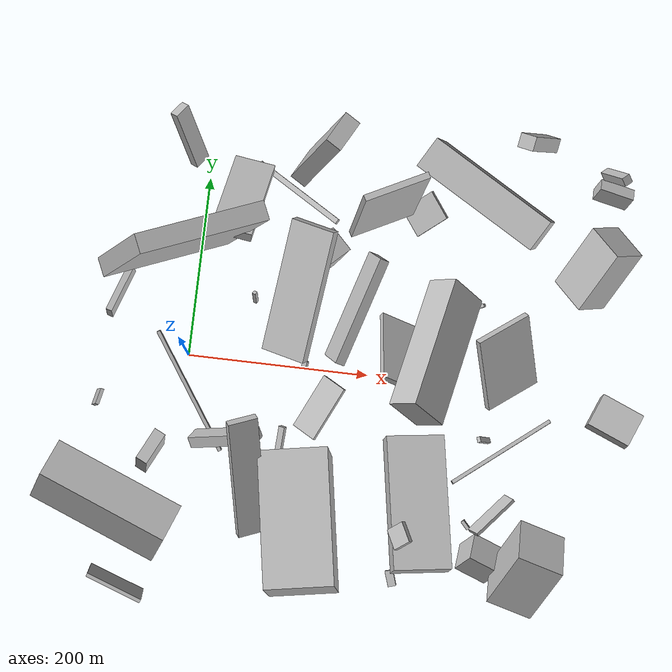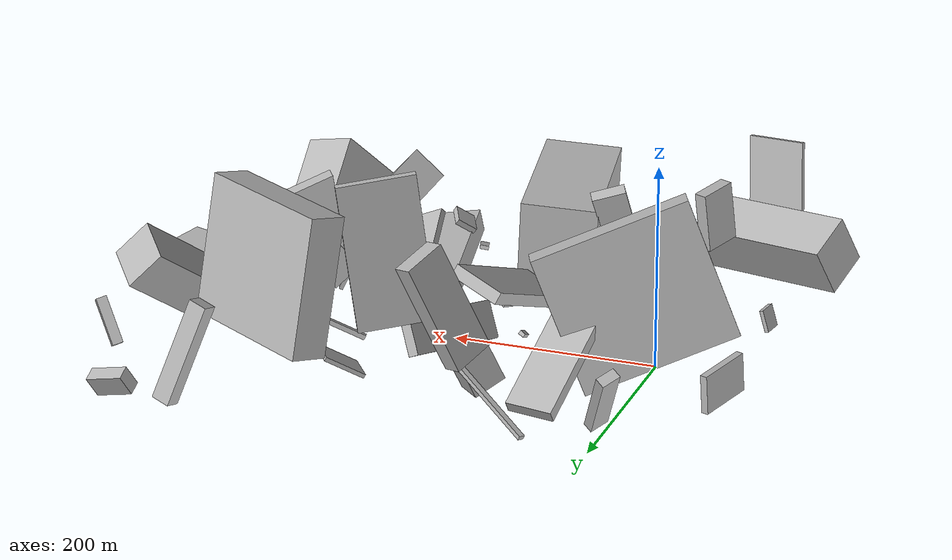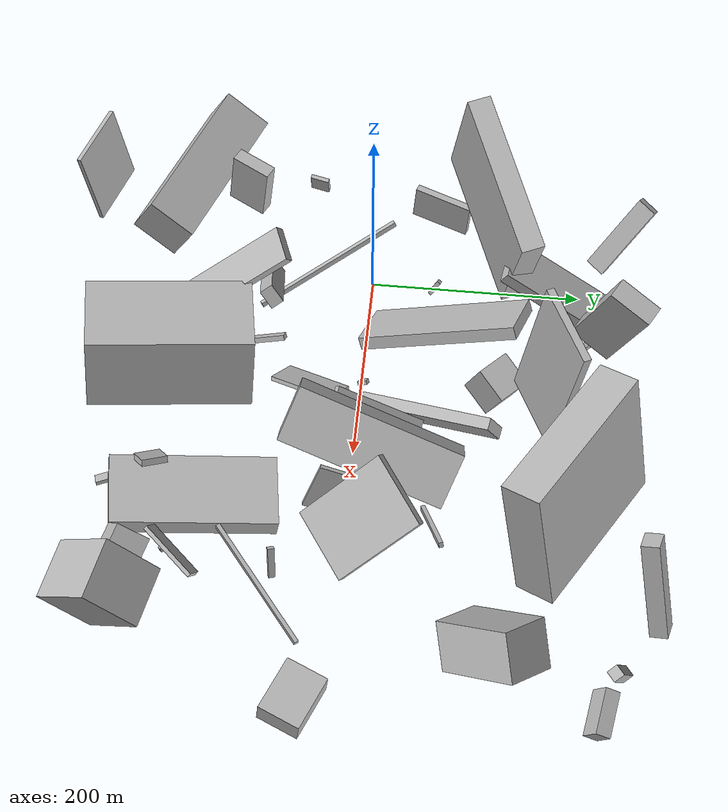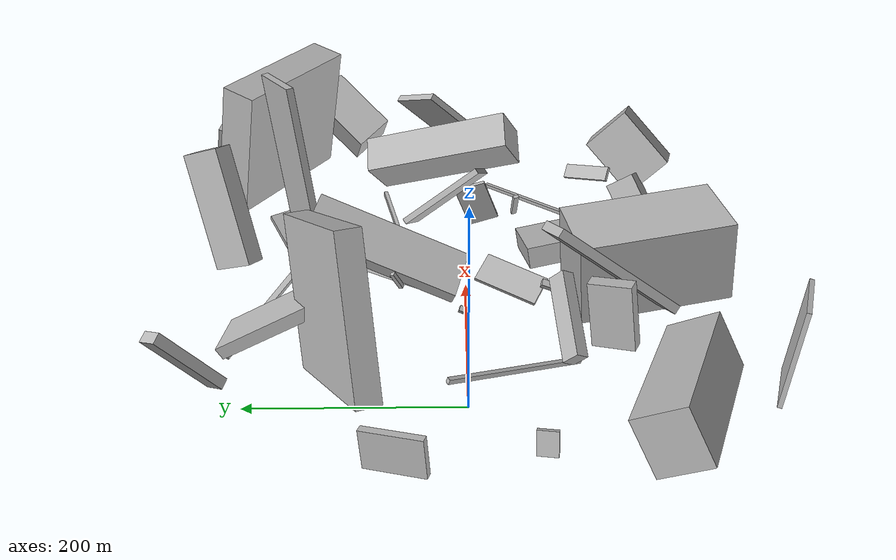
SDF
<sdf version="1.6">
 <world name="default">
  <scene>
   <sky><clouds><speed>12</speed></clouds></sky>
   <ambient>0.4 0.4 0.4 1</ambient>
   <background>0.7 0.7 0.7 1</background>
   <shadows>1</shadows>
  </scene>
  <gravity>0 0 -9.8066</gravity>
  <magnetic_field>6e-06 2.3e-05 -4.2e-05</magnetic_field>
  <physics default="0" name="default_physics" type="ode">
   <ode>
    <solver>
     <type>quick</type>
     <iters>10</iters>
     <sor>1.0</sor>
     <use_dynamic_moi_rescaling>0</use_dynamic_moi_rescaling>
    </solver>
    <constraints>
     <cfm>0</cfm>
     <erp>0.2</erp>
     <contact_max_correcting_vel>100</contact_max_correcting_vel>
     <contact_surface_layer>0.001</contact_surface_layer>
    </constraints>
   </ode>
   <max_step_size>0.004</max_step_size>
   <real_time_factor>1</real_time_factor>
   <real_time_update_rate>250</real_time_update_rate>
  </physics>
  <light name="sun" type="directional">
   <pose>0 0 10 0 0 0</pose>
   <diffuse>0.8 0.8 0.8 1</diffuse>
   <specular>0.2 0.2 0.2 1</specular>
   <attenuation>
    <range>1000</range>
    <constant>0.9</constant>
    <linear>0.01</linear>
    <quadratic>0.001</quadratic>
   </attenuation>
   <direction>-0.5 0.1 -0.9</direction>
  </light>
  <model name="building_1">
   <static>0</static>
   <pose>243.8923714945121 182.61482702744223 43.696038303844745 0.013859221031567661 -0.5389243472475634 0.6192503805278706</pose>
   <link name="link">
    <gravity>0</gravity>
    <pose>0 0 2.0 0 0 0</pose>
    <collision name="collision"><geometry><box><size>42 34 4</size></box></geometry></collision>
    <visual name="visual">
     <cast_shadows>0</cast_shadows>
     <geometry><box><size>42 34 4</size></box></geometry>
     <material>
      <script>
       <uri>model://HANNAS_wall/materials/scripts</uri>
       <uri>model://HANNAS_wall/materials/textures</uri>
       <name>vrc/HANNAS_wall</name>
      </script>
     </material>
    </visual>
   </link>
  </model>
  <model name="building_2">
   <static>0</static>
   <pose>18.241960678553085 -94.00412495111541 37.787467995542606 0.7345366702129014 0.7965632476955266 1.0186601931983357</pose>
   <link name="link">
    <gravity>0</gravity>
    <pose>0 0 41.5 0 0 0</pose>
    <collision name="collision"><geometry><box><size>19 13 83</size></box></geometry></collision>
    <visual name="visual">
     <cast_shadows>0</cast_shadows>
     <geometry><box><size>19 13 83</size></box></geometry>
     <material>
      <script>
       <uri>model://HANNAS_wall/materials/scripts</uri>
       <uri>model://HANNAS_wall/materials/textures</uri>
       <name>vrc/HANNAS_wall</name>
      </script>
     </material>
    </visual>
   </link>
  </model>
  <model name="building_3">
   <static>0</static>
   <pose>419.90557189355656 109.40219672986615 68.28611864637067 0.6025003204381529 -0.7821502527237763 -2.855041254365767</pose>
   <link name="link">
    <gravity>0</gravity>
    <pose>0 0 39.5 0 0 0</pose>
    <collision name="collision"><geometry><box><size>43 45 79</size></box></geometry></collision>
    <visual name="visual">
     <cast_shadows>0</cast_shadows>
     <geometry><box><size>43 45 79</size></box></geometry>
     <material>
      <script>
       <uri>model://HANNAS_wall/materials/scripts</uri>
       <uri>model://HANNAS_wall/materials/textures</uri>
       <name>vrc/HANNAS_wall</name>
      </script>
     </material>
    </visual>
   </link>
  </model>
  <model name="building_4">
   <static>0</static>
   <pose>283.40028032408145 -20.654233420932037 33.016191239805295 0.33263493343330675 0.20328213960037134 -3.1127890953947217</pose>
   <link name="link">
    <gravity>0</gravity>
    <pose>0 0 25.0 0 0 0</pose>
    <collision name="collision"><geometry><box><size>4 33 50</size></box></geometry></collision>
    <visual name="visual">
     <cast_shadows>0</cast_shadows>
     <geometry><box><size>4 33 50</size></box></geometry>
     <material>
      <script>
       <uri>model://HANNAS_wall/materials/scripts</uri>
       <uri>model://HANNAS_wall/materials/textures</uri>
       <name>vrc/HANNAS_wall</name>
      </script>
     </material>
    </visual>
   </link>
  </model>
  <model name="building_5">
   <static>0</static>
   <pose>181.4789528771543 -166.6119653870021 74.46736010561986 -2.1499515866876564 -1.471025422834683 2.317308861496296</pose>
   <link name="link">
    <gravity>0</gravity>
    <pose>0 0 38.0 0 0 0</pose>
    <collision name="collision"><geometry><box><size>84 150 76</size></box></geometry></collision>
    <visual name="visual">
     <cast_shadows>0</cast_shadows>
     <geometry><box><size>84 150 76</size></box></geometry>
     <material>
      <script>
       <uri>model://HANNAS_wall/materials/scripts</uri>
       <uri>model://HANNAS_wall/materials/textures</uri>
       <name>vrc/HANNAS_wall</name>
      </script>
     </material>
    </visual>
   </link>
  </model>
  <model name="building_6">
   <static>0</static>
   <pose>107.5945847538083 6.409925870420096 67.07774372567226 -1.1658102392501586 -0.3346584534881744 -0.26958280534067375</pose>
   <link name="link">
    <gravity>0</gravity>
    <pose>0 0 75.0 0 0 0</pose>
    <collision name="collision"><geometry><box><size>51 12 150</size></box></geometry></collision>
    <visual name="visual">
     <cast_shadows>0</cast_shadows>
     <geometry><box><size>51 12 150</size></box></geometry>
     <material>
      <script>
       <uri>model://HANNAS_wall/materials/scripts</uri>
       <uri>model://HANNAS_wall/materials/textures</uri>
       <name>vrc/HANNAS_wall</name>
      </script>
     </material>
    </visual>
   </link>
  </model>
  <model name="building_7">
   <static>0</static>
   <pose>-11.962330460431211 213.7883722112946 38.079708734842704 -0.3571196053970384 -0.5536955589657974 -0.4340492566187875</pose>
   <link name="link">
    <gravity>0</gravity>
    <pose>0 0 40.5 0 0 0</pose>
    <collision name="collision"><geometry><box><size>10 19 81</size></box></geometry></collision>
    <visual name="visual">
     <cast_shadows>0</cast_shadows>
     <geometry><box><size>10 19 81</size></box></geometry>
     <material>
      <script>
       <uri>model://HANNAS_wall/materials/scripts</uri>
       <uri>model://HANNAS_wall/materials/textures</uri>
       <name>vrc/HANNAS_wall</name>
      </script>
     </material>
    </visual>
   </link>
  </model>
  <model name="building_8">
   <static>0</static>
   <pose>98.43829492097082 -125.25492605747554 87.64671829219643 1.2036257990284944 -0.8283627699073931 -0.9060707070138612</pose>
   <link name="link">
    <gravity>0</gravity>
    <pose>0 0 16.5 0 0 0</pose>
    <collision name="collision"><geometry><box><size>9 150 33</size></box></geometry></collision>
    <visual name="visual">
     <cast_shadows>0</cast_shadows>
     <geometry><box><size>9 150 33</size></box></geometry>
     <material>
      <script>
       <uri>model://HANNAS_wall/materials/scripts</uri>
       <uri>model://HANNAS_wall/materials/textures</uri>
       <name>vrc/HANNAS_wall</name>
      </script>
     </material>
    </visual>
   </link>
  </model>
  <model name="building_9">
   <static>0</static>
   <pose>7.333092155161421 -41.61518437301973 33.22148238561858 0.2677333738152879 -0.19338144611015762 0.5372836583375533</pose>
   <link name="link">
    <gravity>0</gravity>
    <pose>0 0 2.5 0 0 0</pose>
    <collision name="collision"><geometry><box><size>4 150 5</size></box></geometry></collision>
    <visual name="visual">
     <cast_shadows>0</cast_shadows>
     <geometry><box><size>4 150 5</size></box></geometry>
     <material>
      <script>
       <uri>model://HANNAS_wall/materials/scripts</uri>
       <uri>model://HANNAS_wall/materials/textures</uri>
       <name>vrc/HANNAS_wall</name>
      </script>
     </material>
    </visual>
   </link>
  </model>
  <model name="building_10">
   <static>0</static>
   <pose>328.14454676988987 -151.63634612106725 20.166858839872436 -1.89231653860883 -0.12343047972696893 2.319824170937212</pose>
   <link name="link">
    <gravity>0</gravity>
    <pose>0 0 2.0 0 0 0</pose>
    <collision name="collision"><geometry><box><size>11 4 4</size></box></geometry></collision>
    <visual name="visual">
     <cast_shadows>0</cast_shadows>
     <geometry><box><size>11 4 4</size></box></geometry>
     <material>
      <script>
       <uri>model://HANNAS_wall/materials/scripts</uri>
       <uri>model://HANNAS_wall/materials/textures</uri>
       <name>vrc/HANNAS_wall</name>
      </script>
     </material>
    </visual>
   </link>
  </model>
  <model name="building_11">
   <static>0</static>
   <pose>337.0815399840695 -60.68467710966102 23.519225081385773 1.6768758239045125 0.41930071094284554 -2.756219707049934</pose>
   <link name="link">
    <gravity>0</gravity>
    <pose>0 0 3.0 0 0 0</pose>
    <collision name="collision"><geometry><box><size>4 30 6</size></box></geometry></collision>
    <visual name="visual">
     <cast_shadows>0</cast_shadows>
     <geometry><box><size>4 30 6</size></box></geometry>
     <material>
      <script>
       <uri>model://HANNAS_wall/materials/scripts</uri>
       <uri>model://HANNAS_wall/materials/textures</uri>
       <name>vrc/HANNAS_wall</name>
      </script>
     </material>
    </visual>
   </link>
  </model>
  <model name="building_12">
   <static>0</static>
   <pose>253.5827986413497 -174.48705477575263 52.171014033369225 -2.526936709966512 -0.22985858549044416 -1.110257572733226</pose>
   <link name="link">
    <gravity>0</gravity>
    <pose>0 0 3.0 0 0 0</pose>
    <collision name="collision"><geometry><box><size>24 22 6</size></box></geometry></collision>
    <visual name="visual">
     <cast_shadows>0</cast_shadows>
     <geometry><box><size>24 22 6</size></box></geometry>
     <material>
      <script>
       <uri>model://HANNAS_wall/materials/scripts</uri>
       <uri>model://HANNAS_wall/materials/textures</uri>
       <name>vrc/HANNAS_wall</name>
      </script>
     </material>
    </visual>
   </link>
  </model>
  <model name="building_13">
   <static>0</static>
   <pose>3.191532581314542 -201.7520529559573 63.73750619814693 1.4792868348591546 -0.5118842641963164 -1.9039674565541307</pose>
   <link name="link">
    <gravity>0</gravity>
    <pose>0 0 75.0 0 0 0</pose>
    <collision name="collision"><geometry><box><size>48 53 150</size></box></geometry></collision>
    <visual name="visual">
     <cast_shadows>0</cast_shadows>
     <geometry><box><size>48 53 150</size></box></geometry>
     <material>
      <script>
       <uri>model://HANNAS_wall/materials/scripts</uri>
       <uri>model://HANNAS_wall/materials/textures</uri>
       <name>vrc/HANNAS_wall</name>
      </script>
     </material>
    </visual>
   </link>
  </model>
  <model name="building_14">
   <static>0</static>
   <pose>125.26905509513085 136.63060624000485 38.48001245254018 -1.6257752220212964 -0.43254686574934564 -2.337071504083509</pose>
   <link name="link">
    <gravity>0</gravity>
    <pose>0 0 15.5 0 0 0</pose>
    <collision name="collision"><geometry><box><size>33 50 31</size></box></geometry></collision>
    <visual name="visual">
     <cast_shadows>0</cast_shadows>
     <geometry><box><size>33 50 31</size></box></geometry>
     <material>
      <script>
       <uri>model://HANNAS_wall/materials/scripts</uri>
       <uri>model://HANNAS_wall/materials/textures</uri>
       <name>vrc/HANNAS_wall</name>
      </script>
     </material>
    </visual>
   </link>
  </model>
  <model name="building_15">
   <static>0</static>
   <pose>435.42741142188896 246.9933389938099 59.82119393512099 -0.24699526943999034 0.4897912928020638 -0.9836997569224916</pose>
   <link name="link">
    <gravity>0</gravity>
    <pose>0 0 22.5 0 0 0</pose>
    <collision name="collision"><geometry><box><size>10 10 45</size></box></geometry></collision>
    <visual name="visual">
     <cast_shadows>0</cast_shadows>
     <geometry><box><size>10 10 45</size></box></geometry>
     <material>
      <script>
       <uri>model://HANNAS_wall/materials/scripts</uri>
       <uri>model://HANNAS_wall/materials/textures</uri>
       <name>vrc/HANNAS_wall</name>
      </script>
     </material>
    </visual>
   </link>
  </model>
  <model name="building_16">
   <static>0</static>
   <pose>49.24838925531026 142.4705321687852 92.8466602175153 0.14698823493251595 -1.1984990845108947 0.27664753499727707</pose>
   <link name="link">
    <gravity>0</gravity>
    <pose>0 0 75.0 0 0 0</pose>
    <collision name="collision"><geometry><box><size>138 22 150</size></box></geometry></collision>
    <visual name="visual">
     <cast_shadows>0</cast_shadows>
     <geometry><box><size>138 22 150</size></box></geometry>
     <material>
      <script>
       <uri>model://HANNAS_wall/materials/scripts</uri>
       <uri>model://HANNAS_wall/materials/textures</uri>
       <name>vrc/HANNAS_wall</name>
      </script>
     </material>
    </visual>
   </link>
  </model>
  <model name="building_17">
   <static>0</static>
   <pose>131.02782891844572 3.472189936237856 14.279407524355195 0.5198096208214297 0.3887890371508902 -1.6774274642336602</pose>
   <link name="link">
    <gravity>0</gravity>
    <pose>0 0 2.0 0 0 0</pose>
    <collision name="collision"><geometry><box><size>9 6 4</size></box></geometry></collision>
    <visual name="visual">
     <cast_shadows>0</cast_shadows>
     <geometry><box><size>9 6 4</size></box></geometry>
     <material>
      <script>
       <uri>model://HANNAS_wall/materials/scripts</uri>
       <uri>model://HANNAS_wall/materials/textures</uri>
       <name>vrc/HANNAS_wall</name>
      </script>
     </material>
    </visual>
   </link>
  </model>
  <model name="building_18">
   <static>0</static>
   <pose>195.72037143172906 161.17037920031817 79.71723714802208 0.07160271848730045 -0.1316642682314131 -2.6555145006210403</pose>
   <link name="link">
    <gravity>0</gravity>
    <pose>0 0 73.5 0 0 0</pose>
    <collision name="collision"><geometry><box><size>73 7 147</size></box></geometry></collision>
    <visual name="visual">
     <cast_shadows>0</cast_shadows>
     <geometry><box><size>73 7 147</size></box></geometry>
     <material>
      <script>
       <uri>model://HANNAS_wall/materials/scripts</uri>
       <uri>model://HANNAS_wall/materials/textures</uri>
       <name>vrc/HANNAS_wall</name>
      </script>
     </material>
    </visual>
   </link>
  </model>
  <model name="building_19">
   <static>0</static>
   <pose>184.77902288286876 68.04312303186434 39.09471187777321 0.4377659828302351 -1.0829926814017 -0.6897837614322272</pose>
   <link name="link">
    <gravity>0</gravity>
    <pose>0 0 5.5 0 0 0</pose>
    <collision name="collision"><geometry><box><size>37 125 11</size></box></geometry></collision>
    <visual name="visual">
     <cast_shadows>0</cast_shadows>
     <geometry><box><size>37 125 11</size></box></geometry>
     <material>
      <script>
       <uri>model://HANNAS_wall/materials/scripts</uri>
       <uri>model://HANNAS_wall/materials/textures</uri>
       <name>vrc/HANNAS_wall</name>
      </script>
     </material>
    </visual>
   </link>
  </model>
  <model name="building_20">
   <static>0</static>
   <pose>230.56039998977576 57.10420616088511 61.23159988801788 -0.6360702657290804 0.7621998656161982 -2.277642374948566</pose>
   <link name="link">
    <gravity>0</gravity>
    <pose>0 0 45.5 0 0 0</pose>
    <collision name="collision"><geometry><box><size>6 52 91</size></box></geometry></collision>
    <visual name="visual">
     <cast_shadows>0</cast_shadows>
     <geometry><box><size>6 52 91</size></box></geometry>
     <material>
      <script>
       <uri>model://HANNAS_wall/materials/scripts</uri>
       <uri>model://HANNAS_wall/materials/textures</uri>
       <name>vrc/HANNAS_wall</name>
      </script>
     </material>
    </visual>
   </link>
  </model>
  <model name="building_21">
   <static>0</static>
   <pose>286.19908814772566 15.000768356723682 105.20261309995828 0.38080212252798085 0.7270546751366294 -3.0832046424023622</pose>
   <link name="link">
    <gravity>0</gravity>
    <pose>0 0 25.0 0 0 0</pose>
    <collision name="collision"><geometry><box><size>36 150 50</size></box></geometry></collision>
    <visual name="visual">
     <cast_shadows>0</cast_shadows>
     <geometry><box><size>36 150 50</size></box></geometry>
     <material>
      <script>
       <uri>model://HANNAS_wall/materials/scripts</uri>
       <uri>model://HANNAS_wall/materials/textures</uri>
       <name>vrc/HANNAS_wall</name>
      </script>
     </material>
    </visual>
   </link>
  </model>
  <model name="building_22">
   <static>0</static>
   <pose>152.7259917098397 -44.29038412694619 35.758655514964396 0.21480617092064055 -0.4519061779545853 -0.5393746692025592</pose>
   <link name="link">
    <gravity>0</gravity>
    <pose>0 0 2.0 0 0 0</pose>
    <collision name="collision"><geometry><box><size>31 65 4</size></box></geometry></collision>
    <visual name="visual">
     <cast_shadows>0</cast_shadows>
     <geometry><box><size>31 65 4</size></box></geometry>
     <material>
      <script>
       <uri>model://HANNAS_wall/materials/scripts</uri>
       <uri>model://HANNAS_wall/materials/textures</uri>
       <name>vrc/HANNAS_wall</name>
      </script>
     </material>
    </visual>
   </link>
  </model>
  <model name="building_23">
   <static>0</static>
   <pose>283.5842742241876 -209.48604534199816 30.495260225759885 1.7065369739133327 -0.16277364272390263 -2.9977362289662284</pose>
   <link name="link">
    <gravity>0</gravity>
    <pose>0 0 75.0 0 0 0</pose>
    <collision name="collision"><geometry><box><size>65 23 150</size></box></geometry></collision>
    <visual name="visual">
     <cast_shadows>0</cast_shadows>
     <geometry><box><size>65 23 150</size></box></geometry>
     <material>
      <script>
       <uri>model://HANNAS_wall/materials/scripts</uri>
       <uri>model://HANNAS_wall/materials/textures</uri>
       <name>vrc/HANNAS_wall</name>
      </script>
     </material>
    </visual>
   </link>
  </model>
  <model name="building_24">
   <static>0</static>
   <pose>67.66243258083273 63.973680325959876 88.26283842098566 1.2547770880442224 0.39465661170279365 1.1065047982219067</pose>
   <link name="link">
    <gravity>0</gravity>
    <pose>0 0 2.0 0 0 0</pose>
    <collision name="collision"><geometry><box><size>4 17 4</size></box></geometry></collision>
    <visual name="visual">
     <cast_shadows>0</cast_shadows>
     <geometry><box><size>4 17 4</size></box></geometry>
     <material>
      <script>
       <uri>model://HANNAS_wall/materials/scripts</uri>
       <uri>model://HANNAS_wall/materials/textures</uri>
       <name>vrc/HANNAS_wall</name>
      </script>
     </material>
    </visual>
   </link>
  </model>
  <model name="building_25">
   <static>0</static>
   <pose>358.09627201362065 -69.74475213921913 20.91312045555848 -2.1558067283918447 -1.424412050348843 1.2673365097459866</pose>
   <link name="link">
    <gravity>0</gravity>
    <pose>0 0 2.0 0 0 0</pose>
    <collision name="collision"><geometry><box><size>4 130 4</size></box></geometry></collision>
    <visual name="visual">
     <cast_shadows>0</cast_shadows>
     <geometry><box><size>4 130 4</size></box></geometry>
     <material>
      <script>
       <uri>model://HANNAS_wall/materials/scripts</uri>
       <uri>model://HANNAS_wall/materials/textures</uri>
       <name>vrc/HANNAS_wall</name>
      </script>
     </material>
    </visual>
   </link>
  </model>
  <model name="building_26">
   <static>0</static>
   <pose>431.0831930356132 236.12293739939818 19.651591059489306 2.0723036180235943 -1.0313078054972922 0.9617284837317842</pose>
   <link name="link">
    <gravity>0</gravity>
    <pose>0 0 20.0 0 0 0</pose>
    <collision name="collision"><geometry><box><size>22 14 40</size></box></geometry></collision>
    <visual name="visual">
     <cast_shadows>0</cast_shadows>
     <geometry><box><size>22 14 40</size></box></geometry>
     <material>
      <script>
       <uri>model://HANNAS_wall/materials/scripts</uri>
       <uri>model://HANNAS_wall/materials/textures</uri>
       <name>vrc/HANNAS_wall</name>
      </script>
     </material>
    </visual>
   </link>
  </model>
  <model name="building_27">
   <static>0</static>
   <pose>362.41562010382233 -194.54229261581696 28.958301618775643 -1.1421831365040425 0.5459875804142797 1.456648840772632</pose>
   <link name="link">
    <gravity>0</gravity>
    <pose>0 0 19.5 0 0 0</pose>
    <collision name="collision"><geometry><box><size>32 30 39</size></box></geometry></collision>
    <visual name="visual">
     <cast_shadows>0</cast_shadows>
     <geometry><box><size>32 30 39</size></box></geometry>
     <material>
      <script>
       <uri>model://HANNAS_wall/materials/scripts</uri>
       <uri>model://HANNAS_wall/materials/textures</uri>
       <name>vrc/HANNAS_wall</name>
      </script>
     </material>
    </visual>
   </link>
  </model>
  <model name="building_28">
   <static>0</static>
   <pose>114.27853175209401 -95.08733507915312 45.62822606284482 -0.4789665224946386 -0.3488859289163099 1.5088582229682421</pose>
   <link name="link">
    <gravity>0</gravity>
    <pose>0 0 2.5 0 0 0</pose>
    <collision name="collision"><geometry><box><size>53 7 5</size></box></geometry></collision>
    <visual name="visual">
     <cast_shadows>0</cast_shadows>
     <geometry><box><size>53 7 5</size></box></geometry>
     <material>
      <script>
       <uri>model://HANNAS_wall/materials/scripts</uri>
       <uri>model://HANNAS_wall/materials/textures</uri>
       <name>vrc/HANNAS_wall</name>
      </script>
     </material>
    </visual>
   </link>
  </model>
  <model name="building_29">
   <static>0</static>
   <pose>311.6698666663806 206.8570377802638 72.00934846683383 -0.18719152647984813 0.006575032215752127 2.6103231717867015</pose>
   <link name="link">
    <gravity>0</gravity>
    <pose>0 0 66.0 0 0 0</pose>
    <collision name="collision"><geometry><box><size>148 36 132</size></box></geometry></collision>
    <visual name="visual">
     <cast_shadows>0</cast_shadows>
     <geometry><box><size>148 36 132</size></box></geometry>
     <material>
      <script>
       <uri>model://HANNAS_wall/materials/scripts</uri>
       <uri>model://HANNAS_wall/materials/textures</uri>
       <name>vrc/HANNAS_wall</name>
      </script>
     </material>
    </visual>
   </link>
  </model>
  <model name="building_30">
   <static>0</static>
   <pose>-23.566116300405522 -120.19507922739773 84.42905205812892 0.14289291004918722 -0.014356296621004468 2.69647181555783</pose>
   <link name="link">
    <gravity>0</gravity>
    <pose>0 0 29.0 0 0 0</pose>
    <collision name="collision"><geometry><box><size>13 37 58</size></box></geometry></collision>
    <visual name="visual">
     <cast_shadows>0</cast_shadows>
     <geometry><box><size>13 37 58</size></box></geometry>
     <material>
      <script>
       <uri>model://HANNAS_wall/materials/scripts</uri>
       <uri>model://HANNAS_wall/materials/textures</uri>
       <name>vrc/HANNAS_wall</name>
      </script>
     </material>
    </visual>
   </link>
  </model>
  <model name="building_31">
   <static>0</static>
   <pose>419.61438707031215 -201.49023214460158 59.186122407988734 1.236945686030895 -0.770999015234427 -1.5899761347397336</pose>
   <link name="link">
    <gravity>0</gravity>
    <pose>0 0 26.5 0 0 0</pose>
    <collision name="collision"><geometry><box><size>58 76 53</size></box></geometry></collision>
    <visual name="visual">
     <cast_shadows>0</cast_shadows>
     <geometry><box><size>58 76 53</size></box></geometry>
     <material>
      <script>
       <uri>model://HANNAS_wall/materials/scripts</uri>
       <uri>model://HANNAS_wall/materials/textures</uri>
       <name>vrc/HANNAS_wall</name>
      </script>
     </material>
    </visual>
   </link>
  </model>
  <model name="building_32">
   <static>0</static>
   <pose>102.08429577927382 190.6737466331144 35.74313385818957 -0.37029020726670614 -0.13632235614541316 1.0377528285975737</pose>
   <link name="link">
    <gravity>0</gravity>
    <pose>0 0 2.0 0 0 0</pose>
    <collision name="collision"><geometry><box><size>6 120 4</size></box></geometry></collision>
    <visual name="visual">
     <cast_shadows>0</cast_shadows>
     <geometry><box><size>6 120 4</size></box></geometry>
     <material>
      <script>
       <uri>model://HANNAS_wall/materials/scripts</uri>
       <uri>model://HANNAS_wall/materials/textures</uri>
       <name>vrc/HANNAS_wall</name>
      </script>
     </material>
    </visual>
   </link>
  </model>
  <model name="building_33">
   <static>0</static>
   <pose>359.3476603791419 278.24774233257915 75.4677991421076 -2.293438035510062 -1.1896240170224652 -2.621322975271027</pose>
   <link name="link">
    <gravity>0</gravity>
    <pose>0 0 8.0 0 0 0</pose>
    <collision name="collision"><geometry><box><size>99 18 16</size></box></geometry></collision>
    <visual name="visual">
     <cast_shadows>0</cast_shadows>
     <geometry><box><size>99 18 16</size></box></geometry>
     <material>
      <script>
       <uri>model://HANNAS_wall/materials/scripts</uri>
       <uri>model://HANNAS_wall/materials/textures</uri>
       <name>vrc/HANNAS_wall</name>
      </script>
     </material>
    </visual>
   </link>
  </model>
  <model name="building_34">
   <static>0</static>
   <pose>118.72412184700302 229.50066412727753 134.11699202982322 2.011909351288926 -1.14993371612042 0.6335826379609929</pose>
   <link name="link">
    <gravity>0</gravity>
    <pose>0 0 9.5 0 0 0</pose>
    <collision name="collision"><geometry><box><size>110 41 19</size></box></geometry></collision>
    <visual name="visual">
     <cast_shadows>0</cast_shadows>
     <geometry><box><size>110 41 19</size></box></geometry>
     <material>
      <script>
       <uri>model://HANNAS_wall/materials/scripts</uri>
       <uri>model://HANNAS_wall/materials/textures</uri>
       <name>vrc/HANNAS_wall</name>
      </script>
     </material>
    </visual>
   </link>
  </model>
  <model name="building_35">
   <static>0</static>
   <pose>369.90953106865857 -119.587680325718 49.38053325730242 1.2690567311873169 0.6703012465777366 -0.893120811063126</pose>
   <link name="link">
    <gravity>0</gravity>
    <pose>0 0 28.5 0 0 0</pose>
    <collision name="collision"><geometry><box><size>4 16 57</size></box></geometry></collision>
    <visual name="visual">
     <cast_shadows>0</cast_shadows>
     <geometry><box><size>4 16 57</size></box></geometry>
     <material>
      <script>
       <uri>model://HANNAS_wall/materials/scripts</uri>
       <uri>model://HANNAS_wall/materials/textures</uri>
       <name>vrc/HANNAS_wall</name>
      </script>
     </material>
    </visual>
   </link>
  </model>
  <model name="building_36">
   <static>0</static>
   <pose>255.78405036261995 -219.28306993925273 5.805231951311553 -2.3925425165831267 1.329415231579762 1.0543237348324863</pose>
   <link name="link">
    <gravity>0</gravity>
    <pose>0 0 4.5 0 0 0</pose>
    <collision name="collision"><geometry><box><size>4 18 9</size></box></geometry></collision>
    <visual name="visual">
     <cast_shadows>0</cast_shadows>
     <geometry><box><size>4 18 9</size></box></geometry>
     <material>
      <script>
       <uri>model://HANNAS_wall/materials/scripts</uri>
       <uri>model://HANNAS_wall/materials/textures</uri>
       <name>vrc/HANNAS_wall</name>
      </script>
     </material>
    </visual>
   </link>
  </model>
  <model name="building_37">
   <static>0</static>
   <pose>49.13654589625809 216.580558002518 39.82666143028928 -0.04365512596018379 -1.0190361210961287 1.4649328155300085</pose>
   <link name="link">
    <gravity>0</gravity>
    <pose>0 0 52.0 0 0 0</pose>
    <collision name="collision"><geometry><box><size>12 45 104</size></box></geometry></collision>
    <visual name="visual">
     <cast_shadows>0</cast_shadows>
     <geometry><box><size>12 45 104</size></box></geometry>
     <material>
      <script>
       <uri>model://HANNAS_wall/materials/scripts</uri>
       <uri>model://HANNAS_wall/materials/textures</uri>
       <name>vrc/HANNAS_wall</name>
      </script>
     </material>
    </visual>
   </link>
  </model>
  <model name="building_38">
   <static>0</static>
   <pose>-86.20298304076566 62.38676870240367 22.74874349317193 -1.7447202099932986 1.4900418485633835 -2.076189285132515</pose>
   <link name="link">
    <gravity>0</gravity>
    <pose>0 0 3.5 0 0 0</pose>
    <collision name="collision"><geometry><box><size>38 57 7</size></box></geometry></collision>
    <visual name="visual">
     <cast_shadows>0</cast_shadows>
     <geometry><box><size>38 57 7</size></box></geometry>
     <material>
      <script>
       <uri>model://HANNAS_wall/materials/scripts</uri>
       <uri>model://HANNAS_wall/materials/textures</uri>
       <name>vrc/HANNAS_wall</name>
      </script>
     </material>
    </visual>
   </link>
  </model>
  <model name="building_39">
   <static>0</static>
   <pose>-89.84373865772719 -61.36042158081352 38.55190007589897 0.22958889053772197 1.2880006214336062 -3.1340676041898767</pose>
   <link name="link">
    <gravity>0</gravity>
    <pose>0 0 2.0 0 0 0</pose>
    <collision name="collision"><geometry><box><size>22 18 4</size></box></geometry></collision>
    <visual name="visual">
     <cast_shadows>0</cast_shadows>
     <geometry><box><size>22 18 4</size></box></geometry>
     <material>
      <script>
       <uri>model://HANNAS_wall/materials/scripts</uri>
       <uri>model://HANNAS_wall/materials/textures</uri>
       <name>vrc/HANNAS_wall</name>
      </script>
     </material>
    </visual>
   </link>
  </model>
  <model name="building_40">
   <static>0</static>
   <pose>-45.11741917205706 -255.1260174037816 55.46642636418205 0.10267695491461615 -0.10018116925533721 1.2147612058368729</pose>
   <link name="link">
    <gravity>0</gravity>
    <pose>0 0 43.5 0 0 0</pose>
    <collision name="collision"><geometry><box><size>4 63 87</size></box></geometry></collision>
    <visual name="visual">
     <cast_shadows>0</cast_shadows>
     <geometry><box><size>4 63 87</size></box></geometry>
     <material>
      <script>
       <uri>model://HANNAS_wall/materials/scripts</uri>
       <uri>model://HANNAS_wall/materials/textures</uri>
       <name>vrc/HANNAS_wall</name>
      </script>
     </material>
    </visual>
   </link>
  </model>
  <model name="building_41">
   <static>0</static>
   <pose>356.7758398695163 -10.454742551052604 91.82030607827372 0.45013770188565955 0.6981708712835488 2.5295687378762524</pose>
   <link name="link">
    <gravity>0</gravity>
    <pose>0 0 46.5 0 0 0</pose>
    <collision name="collision"><geometry><box><size>7 66 93</size></box></geometry></collision>
    <visual name="visual">
     <cast_shadows>0</cast_shadows>
     <geometry><box><size>7 66 93</size></box></geometry>
     <material>
      <script>
       <uri>model://HANNAS_wall/materials/scripts</uri>
       <uri>model://HANNAS_wall/materials/textures</uri>
       <name>vrc/HANNAS_wall</name>
      </script>
     </material>
    </visual>
   </link>
  </model>
  <model name="building_42">
   <static>0</static>
   <pose>293.3992421765447 79.19810826151708 31.23979273945872 0.0022302365943729805 -0.4523737712725632 0.3433352453069219</pose>
   <link name="link">
    <gravity>0</gravity>
    <pose>0 0 2.5 0 0 0</pose>
    <collision name="collision"><geometry><box><size>64 4 5</size></box></geometry></collision>
    <visual name="visual">
     <cast_shadows>0</cast_shadows>
     <geometry><box><size>64 4 5</size></box></geometry>
     <material>
      <script>
       <uri>model://HANNAS_wall/materials/scripts</uri>
       <uri>model://HANNAS_wall/materials/textures</uri>
       <name>vrc/HANNAS_wall</name>
      </script>
     </material>
    </visual>
   </link>
  </model>
  <model name="building_43">
   <static>0</static>
   <pose>451.9522773634015 -12.868489364419315 45.09765642215933 1.5938923468773336 0.11863700984996356 1.1853119042136653</pose>
   <link name="link">
    <gravity>0</gravity>
    <pose>0 0 25.0 0 0 0</pose>
    <collision name="collision"><geometry><box><size>38 22 50</size></box></geometry></collision>
    <visual name="visual">
     <cast_shadows>0</cast_shadows>
     <geometry><box><size>38 22 50</size></box></geometry>
     <material>
      <script>
       <uri>model://HANNAS_wall/materials/scripts</uri>
       <uri>model://HANNAS_wall/materials/textures</uri>
       <name>vrc/HANNAS_wall</name>
      </script>
     </material>
    </visual>
   </link>
  </model>
 </world>
</sdf>
